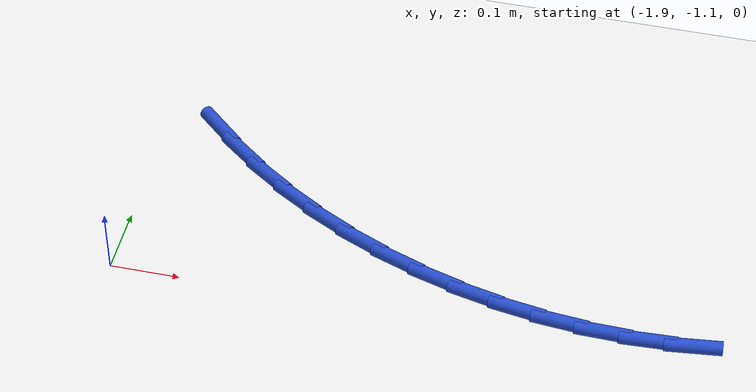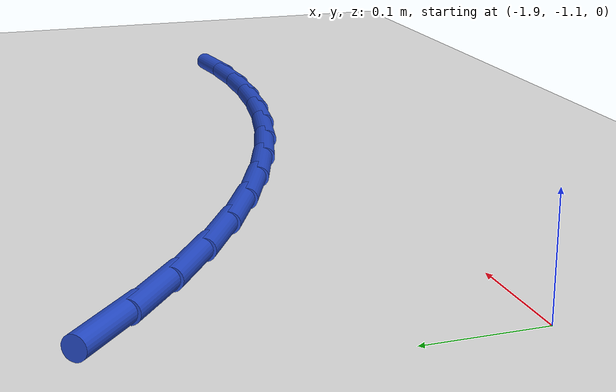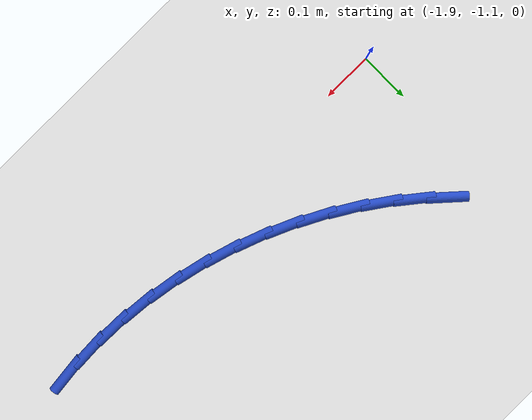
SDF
<sdf version="1.6">
 <world name="default">
  <model name="ground_plane">
   <static>1</static>
   <link name="link">
    <collision name="collision">
     <geometry><plane><normal>0 0 1</normal><size>100 100</size></plane></geometry>
     <surface><friction><ode><mu>100</mu><mu2>50</mu2></ode></friction></surface>
    </collision>
    <visual name="visual">
     <cast_shadows>0</cast_shadows>
     <geometry><plane><normal>0 0 1</normal><size>100 100</size></plane></geometry>
     <material>
      <script><uri>file://media/materials/scripts/gazebo.material</uri><name>Gazebo/WhiteGlow</name></script>
     </material>
    </visual>
   </link>
  </model>
  <model name="line">
   <link name="link_70">
    <pose>-1.822606554875814 -0.8083867158704144 0.01 0 1.57 -0.7308414668522651</pose>
    <collision name="collision">
     <geometry><cylinder><radius>0.01</radius><length>0.08</length></cylinder></geometry>
    </collision>
    <visual name="visual">
     <material>
      <script><name>Gazebo/Blue</name><uri>file://media/materials/scripts/gazebo.material</uri></script>
     </material>
     <geometry><cylinder><radius>0.01</radius><length>0.08</length></cylinder></geometry>
    </visual>
   </link>
   <link name="link_71">
    <pose>-1.7766488285494413 -0.8495847866206957 0.01 0 1.57 -0.6654415513620814</pose>
    <collision name="collision">
     <geometry><cylinder><radius>0.01</radius><length>0.08</length></cylinder></geometry>
    </collision>
    <visual name="visual">
     <material>
      <script><name>Gazebo/Blue</name><uri>file://media/materials/scripts/gazebo.material</uri></script>
     </material>
     <geometry><cylinder><radius>0.01</radius><length>0.08</length></cylinder></geometry>
    </visual>
   </link>
   <link name="link_72">
    <pose>-1.7279555851769266 -0.8878022234603575 0.01 0 1.57 -0.5996316226311748</pose>
    <collision name="collision">
     <geometry><cylinder><radius>0.01</radius><length>0.08</length></cylinder></geometry>
    </collision>
    <visual name="visual">
     <material>
      <script><name>Gazebo/Blue</name><uri>file://media/materials/scripts/gazebo.material</uri></script>
     </material>
     <geometry><cylinder><radius>0.01</radius><length>0.08</length></cylinder></geometry>
    </visual>
   </link>
   <link name="link_73">
    <pose>-1.676664240833861 -0.9228647890171381 0.01 0 1.57 -0.5352008059171653</pose>
    <collision name="collision">
     <geometry><cylinder><radius>0.01</radius><length>0.08</length></cylinder></geometry>
    </collision>
    <visual name="visual">
     <material>
      <script><name>Gazebo/Blue</name><uri>file://media/materials/scripts/gazebo.material</uri></script>
     </material>
     <geometry><cylinder><radius>0.01</radius><length>0.08</length></cylinder></geometry>
    </visual>
   </link>
   <link name="link_74">
    <pose>-1.6230604514287874 -0.9546477979385077 0.01 0 1.57 -0.4718435428298639</pose>
    <collision name="collision">
     <geometry><cylinder><radius>0.01</radius><length>0.08</length></cylinder></geometry>
    </collision>
    <visual name="visual">
     <material>
      <script><name>Gazebo/Blue</name><uri>file://media/materials/scripts/gazebo.material</uri></script>
     </material>
     <geometry><cylinder><radius>0.01</radius><length>0.08</length></cylinder></geometry>
    </visual>
   </link>
   <link name="link_75">
    <pose>-1.5674403056305142 -0.9830300522230212 0.01 0 1.57 -0.4090955916390331</pose>
    <collision name="collision">
     <geometry><cylinder><radius>0.01</radius><length>0.08</length></cylinder></geometry>
    </collision>
    <visual name="visual">
     <material>
      <script><name>Gazebo/Blue</name><uri>file://media/materials/scripts/gazebo.material</uri></script>
     </material>
     <geometry><cylinder><radius>0.01</radius><length>0.08</length></cylinder></geometry>
    </visual>
   </link>
   <link name="link_76">
    <pose>-1.5100998921078483 -1.0078903538692348 0.01 0 1.57 -0.3464877354183961</pose>
    <collision name="collision">
     <geometry><cylinder><radius>0.01</radius><length>0.08</length></cylinder></geometry>
    </collision>
    <visual name="visual">
     <material>
      <script><name>Gazebo/Blue</name><uri>file://media/materials/scripts/gazebo.material</uri></script>
     </material>
     <geometry><cylinder><radius>0.01</radius><length>0.08</length></cylinder></geometry>
    </visual>
   </link>
   <link name="link_77">
    <pose>-1.451335299529601 -1.0291075048757046 0.01 0 1.57 -0.2835494788885654</pose>
    <collision name="collision">
     <geometry><cylinder><radius>0.01</radius><length>0.08</length></cylinder></geometry>
    </collision>
    <visual name="visual">
     <material>
      <script><name>Gazebo/Blue</name><uri>file://media/materials/scripts/gazebo.material</uri></script>
     </material>
     <geometry><cylinder><radius>0.01</radius><length>0.08</length></cylinder></geometry>
    </visual>
   </link>
   <link name="link_78">
    <pose>-1.3914426165645766 -1.046560307240986 0.01 0 1.57 -0.2198123682068417</pose>
    <collision name="collision">
     <geometry><cylinder><radius>0.01</radius><length>0.08</length></cylinder></geometry>
    </collision>
    <visual name="visual">
     <material>
      <script><name>Gazebo/Blue</name><uri>file://media/materials/scripts/gazebo.material</uri></script>
     </material>
     <geometry><cylinder><radius>0.01</radius><length>0.08</length></cylinder></geometry>
    </visual>
   </link>
   <link name="link_79">
    <pose>-1.3307179318815867 -1.0601275629636349 0.01 0 1.57 -0.15481416808191464</pose>
    <collision name="collision">
     <geometry><cylinder><radius>0.01</radius><length>0.08</length></cylinder></geometry>
    </collision>
    <visual name="visual">
     <material>
      <script><name>Gazebo/Blue</name><uri>file://media/materials/scripts/gazebo.material</uri></script>
     </material>
     <geometry><cylinder><radius>0.01</radius><length>0.08</length></cylinder></geometry>
    </visual>
   </link>
   <link name="link_80">
    <pose>-1.269457334149437 -1.069688074042207 0.01 0 1.57 -0.08810515704531315</pose>
    <collision name="collision">
     <geometry><cylinder><radius>0.01</radius><length>0.08</length></cylinder></geometry>
    </collision>
    <visual name="visual">
     <material>
      <script><name>Gazebo/Blue</name><uri>file://media/materials/scripts/gazebo.material</uri></script>
     </material>
     <geometry><cylinder><radius>0.01</radius><length>0.08</length></cylinder></geometry>
    </visual>
   </link>
   <link name="link_81">
    <pose>-1.2079569120369371 -1.0751206424752577 0.01 0 1.57 -0.019312843891591013</pose>
    <collision name="collision">
     <geometry><cylinder><radius>0.01</radius><length>0.08</length></cylinder></geometry>
    </collision>
    <visual name="visual">
     <material>
      <script><name>Gazebo/Blue</name><uri>file://media/materials/scripts/gazebo.material</uri></script>
     </material>
     <geometry><cylinder><radius>0.01</radius><length>0.08</length></cylinder></geometry>
    </visual>
   </link>
   <link name="link_82">
    <pose>-1.1465108114067282 -1.0763074889871656 0.01 0 1.57 0.04945391182126632</pose>
    <collision name="collision">
     <geometry><cylinder><radius>0.01</radius><length>0.08</length></cylinder></geometry>
    </collision>
    <visual name="visual">
     <material>
      <script><name>Gazebo/Blue</name><uri>file://media/materials/scripts/gazebo.material</uri></script>
     </material>
     <geometry><cylinder><radius>0.01</radius><length>0.08</length></cylinder></geometry>
    </visual>
   </link>
   <link name="link_83">
    <pose>-1.0853287906196962 -1.0732793296778178 0.01 0 1.57 0.11474590852935734</pose>
    <collision name="collision">
     <geometry><cylinder><radius>0.01</radius><length>0.08</length></cylinder></geometry>
    </collision>
    <visual name="visual">
     <material>
      <script><name>Gazebo/Blue</name><uri>file://media/materials/scripts/gazebo.material</uri></script>
     </material>
     <geometry><cylinder><radius>0.01</radius><length>0.08</length></cylinder></geometry>
    </visual>
   </link>
  </model>
 </world>
</sdf>
